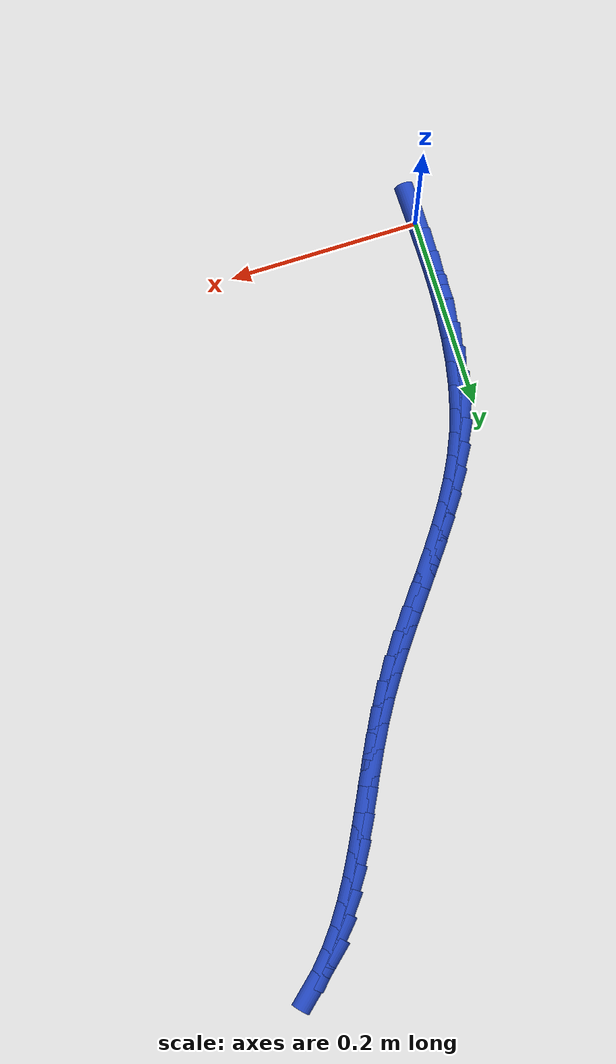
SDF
<sdf version="1.6">
 <world name="default">
  <model name="ground_plane">
   <static>1</static>
   <link name="link">
    <collision name="collision">
     <geometry><plane><normal>0 0 1</normal><size>100 100</size></plane></geometry>
     <surface><friction><ode><mu>100</mu><mu2>50</mu2></ode></friction></surface>
    </collision>
    <visual name="visual">
     <cast_shadows>0</cast_shadows>
     <geometry><plane><normal>0 0 1</normal><size>100 100</size></plane></geometry>
     <material>
      <script><uri>file://media/materials/scripts/gazebo.material</uri><name>Gazebo/WhiteGlow</name></script>
     </material>
    </visual>
   </link>
  </model>
  <model name="line">
   <link name="link_1">
    <pose>-0.0006945769064042888 0.026010533132282784 0.01 0 1.57 -1.5641033546947571</pose>
    <collision name="collision">
     <geometry><cylinder><radius>0.01</radius><length>0.08</length></cylinder></geometry>
    </collision>
    <visual name="visual">
     <material>
      <script><name>Gazebo/Blue</name><uri>file://media/materials/scripts/gazebo.material</uri></script>
     </material>
     <geometry><cylinder><radius>0.01</radius><length>0.08</length></cylinder></geometry>
    </visual>
   </link>
   <link name="link_2">
    <pose>-0.0008692416811515219 0.05210688674604347 0.01 0 1.57 1.551451761372284</pose>
    <collision name="collision">
     <geometry><cylinder><radius>0.01</radius><length>0.08</length></cylinder></geometry>
    </collision>
    <visual name="visual">
     <material>
      <script><name>Gazebo/Blue</name><uri>file://media/materials/scripts/gazebo.material</uri></script>
     </material>
     <geometry><cylinder><radius>0.01</radius><length>0.08</length></cylinder></geometry>
    </visual>
   </link>
   <link name="link_3">
    <pose>-0.0003648800003902909 0.0781761602297236 0.01 0 1.57 1.519067003434756</pose>
    <collision name="collision">
     <geometry><cylinder><radius>0.01</radius><length>0.08</length></cylinder></geometry>
    </collision>
    <visual name="visual">
     <material>
      <script><name>Gazebo/Blue</name><uri>file://media/materials/scripts/gazebo.material</uri></script>
     </material>
     <geometry><cylinder><radius>0.01</radius><length>0.08</length></cylinder></geometry>
    </visual>
   </link>
   <link name="link_4">
    <pose>0.0009776224597308214 0.10410545297176448 0.01 0 1.57 1.4799225139449588</pose>
    <collision name="collision">
     <geometry><cylinder><radius>0.01</radius><length>0.08</length></cylinder></geometry>
    </collision>
    <visual name="visual">
     <material>
      <script><name>Gazebo/Blue</name><uri>file://media/materials/scripts/gazebo.material</uri></script>
     </material>
     <geometry><cylinder><radius>0.01</radius><length>0.08</length></cylinder></geometry>
    </visual>
   </link>
   <link name="link_5">
    <pose>0.003317380023063229 0.12978186436060762 0.01 0 1.57 1.433536079719828</pose>
    <collision name="collision">
     <geometry><cylinder><radius>0.01</radius><length>0.08</length></cylinder></geometry>
    </collision>
    <visual name="visual">
     <material>
      <script><name>Gazebo/Blue</name><uri>file://media/materials/scripts/gazebo.material</uri></script>
     </material>
     <geometry><cylinder><radius>0.01</radius><length>0.08</length></cylinder></geometry>
    </visual>
   </link>
   <link name="link_6">
    <pose>0.006813507013458355 0.15509249378469447 0.01 0 1.57 1.3794011994695092</pose>
    <collision name="collision">
     <geometry><cylinder><radius>0.01</radius><length>0.08</length></cylinder></geometry>
    </collision>
    <visual name="visual">
     <material>
      <script><name>Gazebo/Blue</name><uri>file://media/materials/scripts/gazebo.material</uri></script>
     </material>
     <geometry><cylinder><radius>0.01</radius><length>0.08</length></cylinder></geometry>
    </visual>
   </link>
   <link name="link_7">
    <pose>0.011625117754767612 0.17992444063246638 0.01 0 1.57 1.3170576739655524</pose>
    <collision name="collision">
     <geometry><cylinder><radius>0.01</radius><length>0.08</length></cylinder></geometry>
    </collision>
    <visual name="visual">
     <material>
      <script><name>Gazebo/Blue</name><uri>file://media/materials/scripts/gazebo.material</uri></script>
     </material>
     <geometry><cylinder><radius>0.01</radius><length>0.08</length></cylinder></geometry>
    </visual>
   </link>
   <link name="link_8">
    <pose>0.017911326570842417 0.20416480429236478 0.01 0 1.57 1.2461947583753787</pose>
    <collision name="collision">
     <geometry><cylinder><radius>0.01</radius><length>0.08</length></cylinder></geometry>
    </collision>
    <visual name="visual">
     <material>
      <script><name>Gazebo/Blue</name><uri>file://media/materials/scripts/gazebo.material</uri></script>
     </material>
     <geometry><cylinder><radius>0.01</radius><length>0.08</length></cylinder></geometry>
    </visual>
   </link>
   <link name="link_9">
    <pose>0.025831247785534178 0.2277006841528311 0.01 0 1.57 1.1689381546140352</pose>
    <collision name="collision">
     <geometry><cylinder><radius>0.01</radius><length>0.08</length></cylinder></geometry>
    </collision>
    <visual name="visual">
     <material>
      <script><name>Gazebo/Blue</name><uri>file://media/materials/scripts/gazebo.material</uri></script>
     </material>
     <geometry><cylinder><radius>0.01</radius><length>0.08</length></cylinder></geometry>
    </visual>
   </link>
   <link name="link_10">
    <pose>0.03549824462798571 0.25044734736990293 0.01 0 1.57 1.0984623519737777</pose>
    <collision name="collision">
     <geometry><cylinder><radius>0.01</radius><length>0.08</length></cylinder></geometry>
    </collision>
    <visual name="visual">
     <material>
      <script><name>Gazebo/Blue</name><uri>file://media/materials/scripts/gazebo.material</uri></script>
     </material>
     <geometry><cylinder><radius>0.01</radius><length>0.08</length></cylinder></geometry>
    </visual>
   </link>
   <link name="link_11">
    <pose>0.04675749465776279 0.2724851760911028 0.01 0 1.57 1.0401030312859874</pose>
    <collision name="collision">
     <geometry><cylinder><radius>0.01</radius><length>0.08</length></cylinder></geometry>
    </collision>
    <visual name="visual">
     <material>
      <script><name>Gazebo/Blue</name><uri>file://media/materials/scripts/gazebo.material</uri></script>
     </material>
     <geometry><cylinder><radius>0.01</radius><length>0.08</length></cylinder></geometry>
    </visual>
   </link>
   <link name="link_12">
    <pose>0.05935675718013327 0.293954530367524 0.01 0 1.57 0.9940859030664071</pose>
    <collision name="collision">
     <geometry><cylinder><radius>0.01</radius><length>0.08</length></cylinder></geometry>
    </collision>
    <visual name="visual">
     <material>
      <script><name>Gazebo/Blue</name><uri>file://media/materials/scripts/gazebo.material</uri></script>
     </material>
     <geometry><cylinder><radius>0.01</radius><length>0.08</length></cylinder></geometry>
    </visual>
   </link>
   <link name="link_13">
    <pose>0.07304365355527137 0.3149958551794917 0.01 0 1.57 0.9602471662408425</pose>
    <collision name="collision">
     <geometry><cylinder><radius>0.01</radius><length>0.08</length></cylinder></geometry>
    </collision>
    <visual name="visual">
     <material>
      <script><name>Gazebo/Blue</name><uri>file://media/materials/scripts/gazebo.material</uri></script>
     </material>
     <geometry><cylinder><radius>0.01</radius><length>0.08</length></cylinder></geometry>
    </visual>
   </link>
   <link name="link_14">
    <pose>0.08756580514335131 0.33574959550733097 0.01 0 1.57 0.9382519857669462</pose>
    <collision name="collision">
     <geometry><cylinder><radius>0.01</radius><length>0.08</length></cylinder></geometry>
    </collision>
    <visual name="visual">
     <material>
      <script><name>Gazebo/Blue</name><uri>file://media/materials/scripts/gazebo.material</uri></script>
     </material>
     <geometry><cylinder><radius>0.01</radius><length>0.08</length></cylinder></geometry>
    </visual>
   </link>
   <link name="link_15">
    <pose>0.10267083330454733 0.3563561963313673 0.01 0 1.57 0.9277428616918234</pose>
    <collision name="collision">
     <geometry><cylinder><radius>0.01</radius><length>0.08</length></cylinder></geometry>
    </collision>
    <visual name="visual">
     <material>
      <script><name>Gazebo/Blue</name><uri>file://media/materials/scripts/gazebo.material</uri></script>
     </material>
     <geometry><cylinder><radius>0.01</radius><length>0.08</length></cylinder></geometry>
    </visual>
   </link>
   <link name="link_16">
    <pose>0.11810635939903362 0.3769561026319256 0.01 0 1.57 0.9284258457001995</pose>
    <collision name="collision">
     <geometry><cylinder><radius>0.01</radius><length>0.08</length></cylinder></geometry>
    </collision>
    <visual name="visual">
     <material>
      <script><name>Gazebo/Blue</name><uri>file://media/materials/scripts/gazebo.material</uri></script>
     </material>
     <geometry><cylinder><radius>0.01</radius><length>0.08</length></cylinder></geometry>
    </visual>
   </link>
   <link name="link_17">
    <pose>0.1336200047869845 0.3976897593893314 0.01 0 1.57 0.9401051129426881</pose>
    <collision name="collision">
     <geometry><cylinder><radius>0.01</radius><length>0.08</length></cylinder></geometry>
    </collision>
    <visual name="visual">
     <material>
      <script><name>Gazebo/Blue</name><uri>file://media/materials/scripts/gazebo.material</uri></script>
     </material>
     <geometry><cylinder><radius>0.01</radius><length>0.08</length></cylinder></geometry>
    </visual>
   </link>
   <link name="link_18">
    <pose>0.148959390828574 0.41869761158390956 0.01 0 1.57 0.9626752869535677</pose>
    <collision name="collision">
     <geometry><cylinder><radius>0.01</radius><length>0.08</length></cylinder></geometry>
    </collision>
    <visual name="visual">
     <material>
      <script><name>Gazebo/Blue</name><uri>file://media/materials/scripts/gazebo.material</uri></script>
     </material>
     <geometry><cylinder><radius>0.01</radius><length>0.08</length></cylinder></geometry>
    </visual>
   </link>
   <link name="link_19">
    <pose>0.1638721388839766 0.44012010419598563 0.01 0 1.57 0.9960764072536041</pose>
    <collision name="collision">
     <geometry><cylinder><radius>0.01</radius><length>0.08</length></cylinder></geometry>
    </collision>
    <visual name="visual">
     <material>
      <script><name>Gazebo/Blue</name><uri>file://media/materials/scripts/gazebo.material</uri></script>
     </material>
     <geometry><cylinder><radius>0.01</radius><length>0.08</length></cylinder></geometry>
    </visual>
   </link>
   <link name="link_20">
    <pose>0.1781058703133663 0.46209768220588465 0.01 0 1.57 1.038471397476228</pose>
    <collision name="collision">
     <geometry><cylinder><radius>0.01</radius><length>0.08</length></cylinder></geometry>
    </collision>
    <visual name="visual">
     <material>
      <script><name>Gazebo/Blue</name><uri>file://media/materials/scripts/gazebo.material</uri></script>
     </material>
     <geometry><cylinder><radius>0.01</radius><length>0.08</length></cylinder></geometry>
    </visual>
   </link>
   <link name="link_21">
    <pose>0.1914452358219514 0.4847434565708196 0.01 0 1.57 1.0754194732809101</pose>
    <collision name="collision">
     <geometry><cylinder><radius>0.01</radius><length>0.08</length></cylinder></geometry>
    </collision>
    <visual name="visual">
     <material>
      <script><name>Gazebo/Blue</name><uri>file://media/materials/scripts/gazebo.material</uri></script>
     </material>
     <geometry><cylinder><radius>0.01</radius><length>0.08</length></cylinder></geometry>
    </visual>
   </link>
   <link name="link_22">
    <pose>0.20398109973841444 0.5079444999463887 0.01 0 1.57 1.1000887720050077</pose>
    <collision name="collision">
     <geometry><cylinder><radius>0.01</radius><length>0.08</length></cylinder></geometry>
    </collision>
    <visual name="visual">
     <material>
      <script><name>Gazebo/Blue</name><uri>file://media/materials/scripts/gazebo.material</uri></script>
     </material>
     <geometry><cylinder><radius>0.01</radius><length>0.08</length></cylinder></geometry>
    </visual>
   </link>
   <link name="link_23">
    <pose>0.21595542862052414 0.5314763455640286 0.01 0 1.57 1.1126762225218039</pose>
    <collision name="collision">
     <geometry><cylinder><radius>0.01</radius><length>0.08</length></cylinder></geometry>
    </collision>
    <visual name="visual">
     <material>
      <script><name>Gazebo/Blue</name><uri>file://media/materials/scripts/gazebo.material</uri></script>
     </material>
     <geometry><cylinder><radius>0.01</radius><length>0.08</length></cylinder></geometry>
    </visual>
   </link>
   <link name="link_24">
    <pose>0.2276112545944578 0.5551137400824866 0.01 0 1.57 1.113238810815291</pose>
    <collision name="collision">
     <geometry><cylinder><radius>0.01</radius><length>0.08</length></cylinder></geometry>
    </collision>
    <visual name="visual">
     <material>
      <script><name>Gazebo/Blue</name><uri>file://media/materials/scripts/gazebo.material</uri></script>
     </material>
     <geometry><cylinder><radius>0.01</radius><length>0.08</length></cylinder></geometry>
    </visual>
   </link>
   <link name="link_25">
    <pose>0.23919160978639256 0.57863143016051 0.01 0 1.57 1.101587026631057</pose>
    <collision name="collision">
     <geometry><cylinder><radius>0.01</radius><length>0.08</length></cylinder></geometry>
    </collision>
    <visual name="visual">
     <material>
      <script><name>Gazebo/Blue</name><uri>file://media/materials/scripts/gazebo.material</uri></script>
     </material>
     <geometry><cylinder><radius>0.01</radius><length>0.08</length></cylinder></geometry>
    </visual>
   </link>
   <link name="link_26">
    <pose>0.2509395263225058 0.6018041624568465 0.01 0 1.57 1.077269316741888</pose>
    <collision name="collision">
     <geometry><cylinder><radius>0.01</radius><length>0.08</length></cylinder></geometry>
    </collision>
    <visual name="visual">
     <material>
      <script><name>Gazebo/Blue</name><uri>file://media/materials/scripts/gazebo.material</uri></script>
     </material>
     <geometry><cylinder><radius>0.01</radius><length>0.08</length></cylinder></geometry>
    </visual>
   </link>
   <link name="link_27">
    <pose>0.2630980363289746 0.624406683630243 0.01 0 1.57 1.0396020107929562</pose>
    <collision name="collision">
     <geometry><cylinder><radius>0.01</radius><length>0.08</length></cylinder></geometry>
    </collision>
    <visual name="visual">
     <material>
      <script><name>Gazebo/Blue</name><uri>file://media/materials/scripts/gazebo.material</uri></script>
     </material>
     <geometry><cylinder><radius>0.01</radius><length>0.08</length></cylinder></geometry>
    </visual>
   </link>
   <link name="link_28">
    <pose>0.2759101719319764 0.6462137403394473 0.01 0 1.57 0.9877648865269281</pose>
    <collision name="collision">
     <geometry><cylinder><radius>0.01</radius><length>0.08</length></cylinder></geometry>
    </collision>
    <visual name="visual">
     <material>
      <script><name>Gazebo/Blue</name><uri>file://media/materials/scripts/gazebo.material</uri></script>
     </material>
     <geometry><cylinder><radius>0.01</radius><length>0.08</length></cylinder></geometry>
    </visual>
   </link>
   <link name="link_29">
    <pose>0.2896189652576882 0.6670000792432065 0.01 0 1.57 0.9209971281679276</pose>
    <collision name="collision">
     <geometry><cylinder><radius>0.01</radius><length>0.08</length></cylinder></geometry>
    </collision>
    <visual name="visual">
     <material>
      <script><name>Gazebo/Blue</name><uri>file://media/materials/scripts/gazebo.material</uri></script>
     </material>
     <geometry><cylinder><radius>0.01</radius><length>0.08</length></cylinder></geometry>
    </visual>
   </link>
   <link name="link_30">
    <pose>0.3044674484322874 0.6865404470002678 0.01 0 1.57 0.8389306257135608</pose>
    <collision name="collision">
     <geometry><cylinder><radius>0.01</radius><length>0.08</length></cylinder></geometry>
    </collision>
    <visual name="visual">
     <material>
      <script><name>Gazebo/Blue</name><uri>file://media/materials/scripts/gazebo.material</uri></script>
     </material>
     <geometry><cylinder><radius>0.01</radius><length>0.08</length></cylinder></geometry>
    </visual>
   </link>
   <link name="link_31">
    <pose>0.3206986535819511 0.7046095902693787 0.01 0 1.57 0.7423432842964971</pose>
    <collision name="collision">
     <geometry><cylinder><radius>0.01</radius><length>0.08</length></cylinder></geometry>
    </collision>
    <visual name="visual">
     <material>
      <script><name>Gazebo/Blue</name><uri>file://media/materials/scripts/gazebo.material</uri></script>
     </material>
     <geometry><cylinder><radius>0.01</radius><length>0.08</length></cylinder></geometry>
    </visual>
   </link>
   <link name="link_270">
    <pose>-1.1275702593849246e-17 1.1102230246251565e-16 0.01 0 1.57 -1.542916383060498</pose>
    <collision name="collision">
     <geometry><cylinder><radius>0.01</radius><length>0.08</length></cylinder></geometry>
    </collision>
    <visual name="visual">
     <material>
      <script><name>Gazebo/Blue</name><uri>file://media/materials/scripts/gazebo.material</uri></script>
     </material>
     <geometry><cylinder><radius>0.01</radius><length>0.08</length></cylinder></geometry>
    </visual>
   </link>
   <link name="link_271">
    <pose>-0.0007259673839032722 0.026032307849503156 0.01 0 1.57 -1.5557720669342858</pose>
    <collision name="collision">
     <geometry><cylinder><radius>0.01</radius><length>0.08</length></cylinder></geometry>
    </collision>
    <visual name="visual">
     <material>
      <script><name>Gazebo/Blue</name><uri>file://media/materials/scripts/gazebo.material</uri></script>
     </material>
     <geometry><cylinder><radius>0.01</radius><length>0.08</length></cylinder></geometry>
    </visual>
   </link>
   <link name="link_272">
    <pose>-0.0011203655011433156 0.05228108448380345 0.01 0 1.57 -1.549369953229468</pose>
    <collision name="collision">
     <geometry><cylinder><radius>0.01</radius><length>0.08</length></cylinder></geometry>
    </collision>
    <visual name="visual">
     <material>
      <script><name>Gazebo/Blue</name><uri>file://media/materials/scripts/gazebo.material</uri></script>
     </material>
     <geometry><cylinder><radius>0.01</radius><length>0.08</length></cylinder></geometry>
    </visual>
   </link>
  </model>
 </world>
</sdf>
